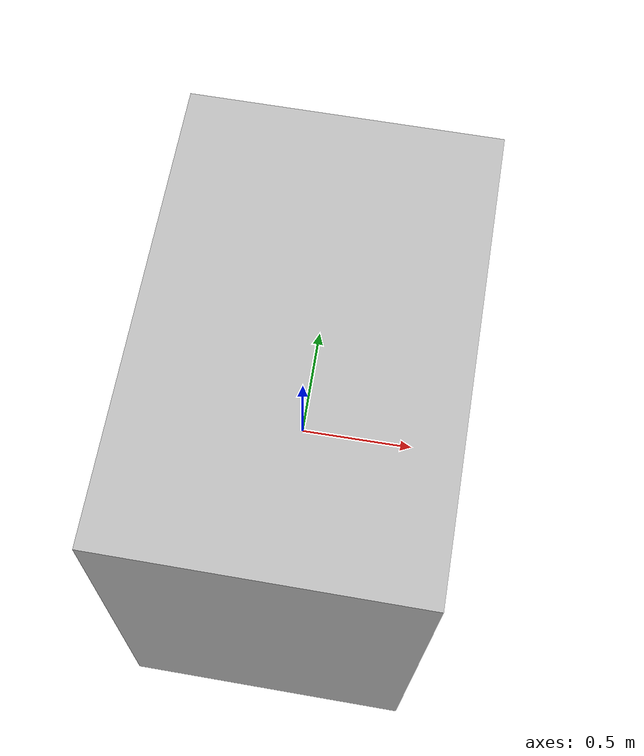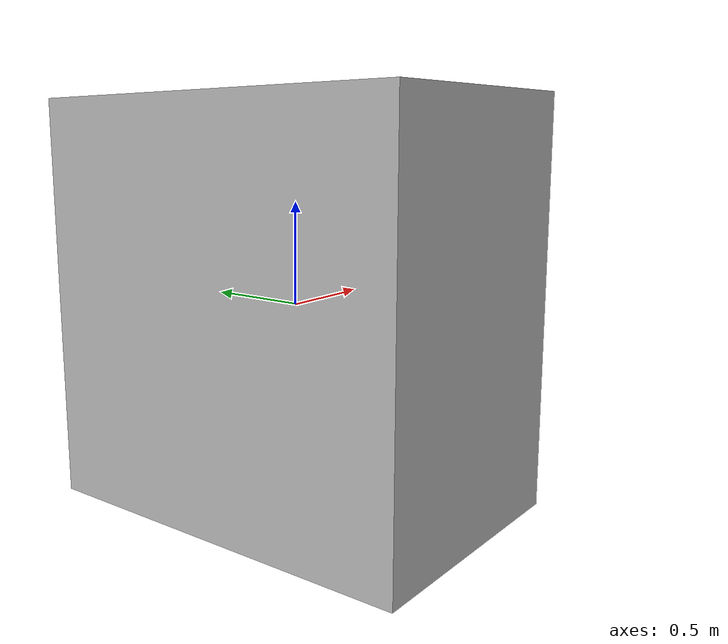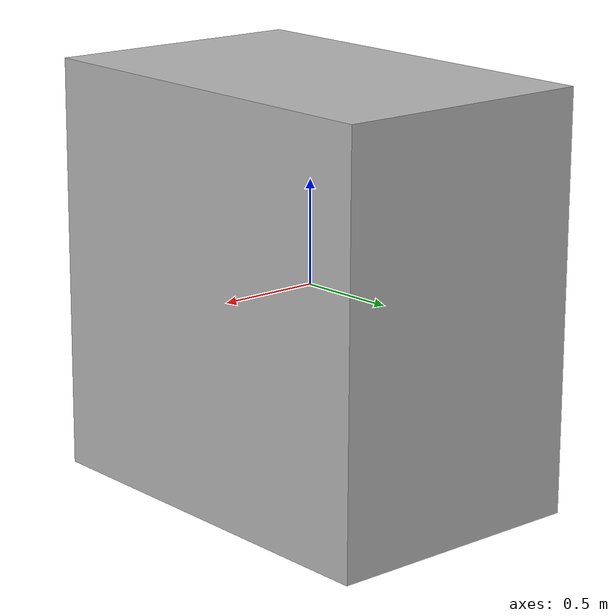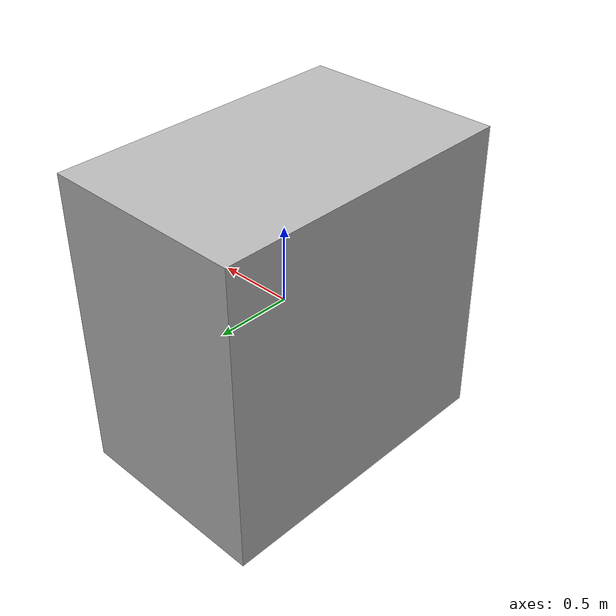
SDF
<?xml version="1.0" ?>

<sdf version="1.6">
  <model name="Aruco_3">
    <link name="link_0">
      <visual name="visual">
        <geometry>
          <mesh>
            <uri>meshes/aruco_3.dae</uri>
          </mesh>
        </geometry>
      </visual>
      <collision name="collision_0">
        <geometry>
          <mesh>
            <uri>meshes/aruco_3.dae</uri>
          </mesh>
        </geometry>
      </collision>
    </link>
  </model>
</sdf>
